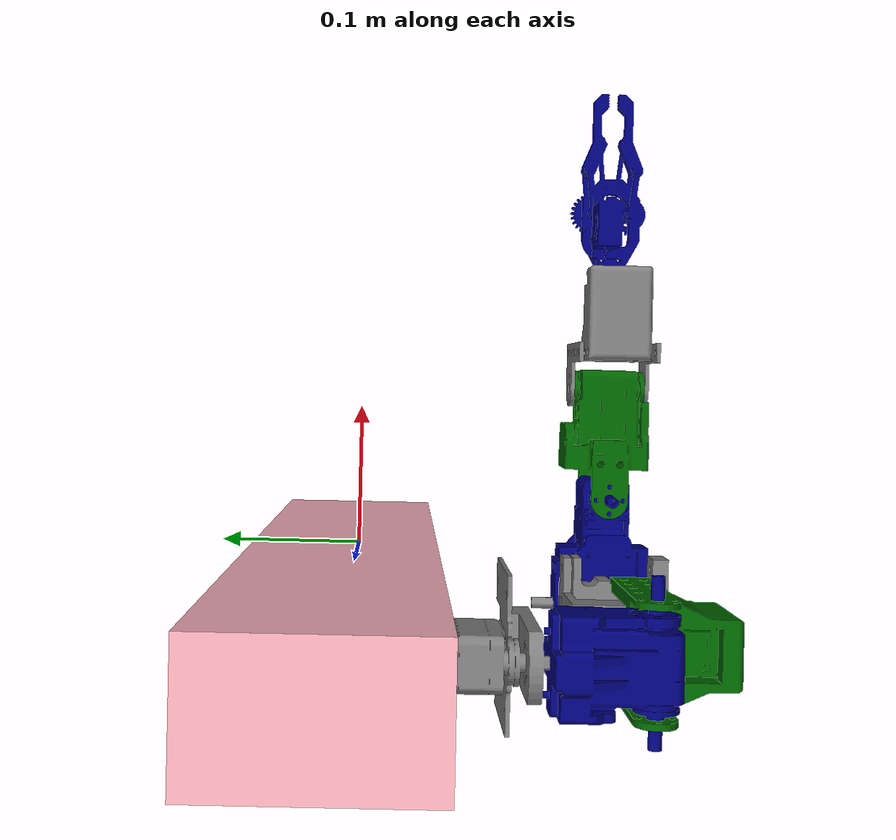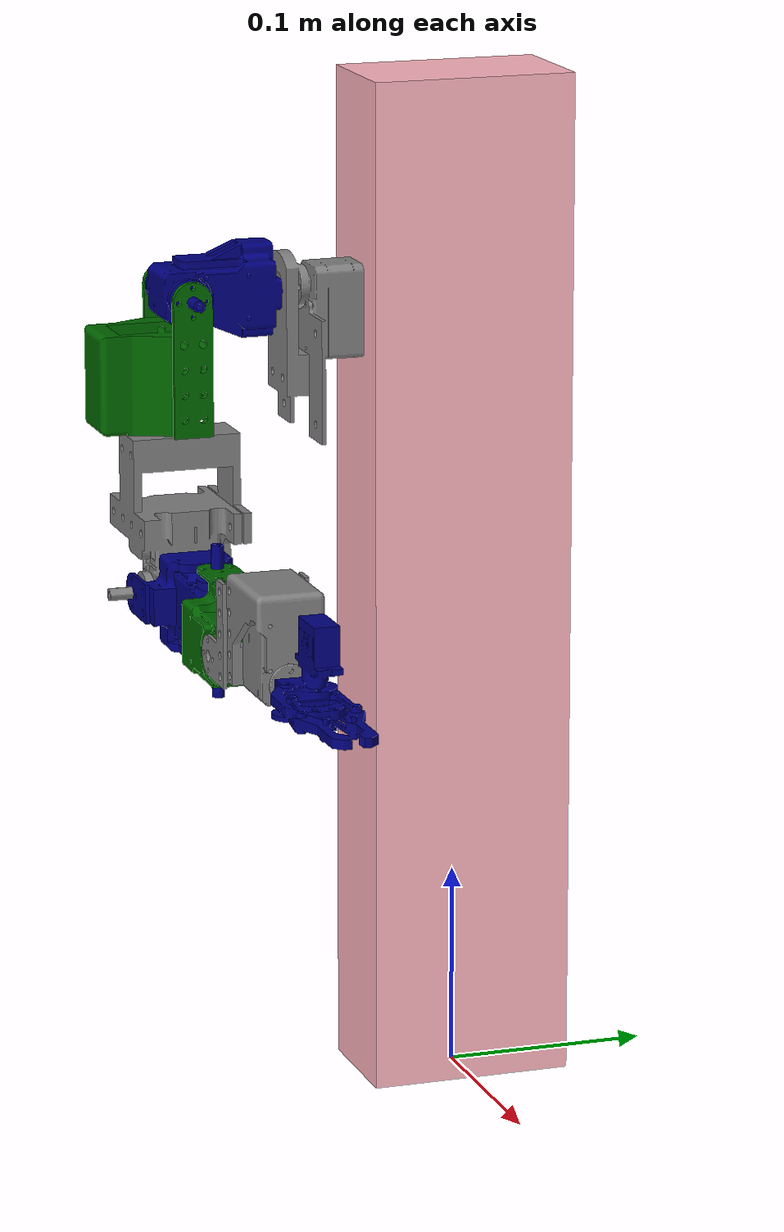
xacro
<?xml version="1.0" encoding="utf-8"?>
<robot name="my_robot"
       xmlns:xacro="http://www.ros.org/wiki/xacro">

  <material name="grey">
      <color rgba="0.5 0.5 0.5 1" />
  </material>

  <material name="blue">
      <color rgba="0 0 0.5 1" />
  </material>

  <material name="green">
      <color rgba="0 0.4 0 1" />
  </material>

    <!-- Torso / base box -->
  <link name="torso_link">
    <inertial>
      <origin xyz="0 0 0.25" rpy="0 0 0"/>
      <mass value="20"/>
      <inertia
        ixx="0.2" ixy="0.0" ixz="0.0"
        iyy="0.2" iyz="0.0"
        izz="0.2"/>
    </inertial>

    <visual>
      <origin xyz="0 0 0.25" rpy="0 0 0"/>
      <geometry>
        <!-- size = X Y Z -->
        <box size="0.06 0.10 0.50"/>
      </geometry>
      <material name="torso_color">
        <color rgba="1 0.71 0.75 1"/>
      </material>
    </visual>

    <collision>
      <origin xyz="0 0 0.25" rpy="0 0 0"/>
      <geometry>
        <box size="0.06 0.10 0.50"/>
      </geometry>
    </collision>
  </link>

  <link
    name="shoulder_base_link">
    <inertial>
      <origin
        xyz="9.72285362626814E-05 -0.00771018833850792 -0.0180870436313402"
        rpy="0 0 0" />
      <mass
        value="0.0651582805484437" />
      <inertia
        ixx="1.32767200995746E-05"
        ixy="2.02180637978025E-10"
        ixz="4.34736932940093E-09"
        iyy="1.87781055840213E-05"
        iyz="2.5203713255228E-07"
        izz="7.01496855003115E-06" />
    </inertial>
    <visual>
      <origin
        xyz="0 0 0"
        rpy="0 0 0" />
      <geometry>
        <mesh
          filename="package://poc_arm/meshes/shoulder_base_link.STL" />
      </geometry>
      <material name="grey"/>
    </visual>
    <collision>
      <origin
        xyz="0 0 0"
        rpy="0 0 0" />
      <geometry>
        <mesh
          filename="package://poc_arm/meshes/shoulder_base_link.STL" />
      </geometry>
    </collision>
  </link>

  <!-- torso -> shoulder_base_link fixed -->
  <joint name="torso_to_shoulder_base" type="fixed">
    <parent link="torso_link"/>
    <child link="shoulder_base_link"/>
    <!-- adjust this offset to place your arm on top of torso -->
    <origin xyz="0 -0.06 0.40" rpy="0 0 0"/>
  </joint>

  <link
    name="shoulder_pitch_link">
    <inertial>
      <origin
        xyz="0.000695666838488873 -0.0235536103888225 0.000772757622635567"
        rpy="0 0 0" />
      <mass
        value="0.0709282831936031" />
      <inertia
        ixx="1.4121265593662E-05"
        ixy="2.81431955942465E-07"
        ixz="3.48400900131928E-09"
        iyy="1.05923368644717E-05"
        iyz="-4.24399378660345E-09"
        izz="1.30240063378582E-05" />
    </inertial>
    <visual>
      <origin
        xyz="0 0 0"
        rpy="0 0 0" />
      <geometry>
        <mesh
          filename="package://poc_arm/meshes/shoulder_pitch_link.STL" />
      </geometry>
      <material name="blue"/>
    </visual>
    <collision>
      <origin
        xyz="0 0 0"
        rpy="0 0 0" />
      <geometry>
        <mesh
          filename="package://poc_arm/meshes/shoulder_pitch_link.STL" />
      </geometry>
    </collision>
  </link>
  <joint
    name="shoulder_pitch_joint"
    type="revolute">
    <origin
      xyz="0 -0.035425 -0.00068462"
      rpy="0 0 0" />
    <parent
      link="shoulder_base_link" />
    <child
      link="shoulder_pitch_link" />
    <axis
      xyz="0 1 0" />
    <limit
      lower="-1.5708"
      upper="1.5708"
      effort="3"
      velocity="4.7124" />
  </joint>
  <link
    name="shoulder_yaw_link">
    <inertial>
      <origin
        xyz="-7.16636869090015E-05 -0.0154295835467579 -0.0407985285364309"
        rpy="0 0 0" />
      <mass
        value="0.0876558621961866" />
      <inertia
        ixx="2.63501922071186E-05"
        ixy="-1.0273756822811E-09"
        ixz="3.57962371416784E-09"
        iyy="2.24741802292208E-05"
        iyz="-7.86171014215507E-07"
        izz="2.43319780460408E-05" />
    </inertial>
    <visual>
      <origin
        xyz="0 0 0"
        rpy="0 0 0" />
      <geometry>
        <mesh
          filename="package://poc_arm/meshes/shoulder_yaw_link.STL" />
      </geometry>
      <material name="green"/>
    </visual>
    <collision>
      <origin
        xyz="0 0 0"
        rpy="0 0 0" />
      <geometry>
        <mesh
          filename="package://poc_arm/meshes/shoulder_yaw_link.STL" />
      </geometry>
    </collision>
  </link>
  <joint
    name="shoulder_yaw_joint"
    type="revolute">
    <origin
      xyz="0.00105 -0.044 0.00068462"
      rpy="0 0 0" />
    <parent
      link="shoulder_pitch_link" />
    <child
      link="shoulder_yaw_link" />
    <axis
      xyz="-1 0 0" />
    <limit
      lower="-1.5708"
      upper="1.5708"
      effort="3"
      velocity="4.7124" />
  </joint>
  <link
    name="shoulder_roll_link">
    <inertial>
      <origin
        xyz="0.000598224096425182 0.000368232301833915 -0.0388934527972102"
        rpy="0 0 0" />
      <mass
        value="0.0957202475262049" />
      <inertia
        ixx="1.86893555445436E-05"
        ixy="3.37979558138656E-09"
        ixz="-5.20164247735112E-09"
        iyy="1.90201410451556E-05"
        iyz="3.38885725507434E-07"
        izz="1.74543729552576E-05" />
    </inertial>
    <visual>
      <origin
        xyz="0 0 0"
        rpy="0 0 0" />
      <geometry>
        <mesh
          filename="package://poc_arm/meshes/shoulder_roll_link.STL" />
      </geometry>
      <material name="grey"/>
    </visual>
    <collision>
      <origin
        xyz="0 0 0"
        rpy="0 0 0" />
      <geometry>
        <mesh
          filename="package://poc_arm/meshes/shoulder_roll_link.STL" />
      </geometry>
    </collision>
  </link>
  <joint
    name="shoulder_roll_joint"
    type="revolute">
    <origin
      xyz="-0.00053416 0.00043 -0.073682"
      rpy="0 0 0" />
    <parent
      link="shoulder_yaw_link" />
    <child
      link="shoulder_roll_link" />
    <axis
      xyz="0 0 1" />
    <limit
      lower="-3.1416"
      upper="3.1416"
      effort="3"
      velocity="4.7124" />
  </joint>
  <link
    name="elbow_link">
    <inertial>
      <origin
        xyz="0.0371367885423096 9.28363839227953E-05 -0.00102046411279516"
        rpy="0 0 0" />
      <mass
        value="0.0667662259503023" />
      <inertia
        ixx="9.52355890862179E-06"
        ixy="5.05999788993877E-09"
        ixz="3.31946587696942E-07"
        iyy="1.14943140009411E-05"
        iyz="-3.44599092893705E-09"
        izz="1.20469291874261E-05" />
    </inertial>
    <visual>
      <origin
        xyz="0 0 0"
        rpy="0 0 0" />
      <geometry>
        <mesh
          filename="package://poc_arm/meshes/elbow_link.STL" />
      </geometry>
      <material name="blue"/>
    </visual>
    <collision>
      <origin
        xyz="0 0 0"
        rpy="0 0 0" />
      <geometry>
        <mesh
          filename="package://poc_arm/meshes/elbow_link.STL" />
      </geometry>
    </collision>
  </link>
  <joint
    name="elbow_joint"
    type="revolute">
    <origin
      xyz="0.00053416 0.000975 -0.071218"
      rpy="0 0 0" />
    <parent
      link="shoulder_roll_link" />
    <child
      link="elbow_link" />
    <axis
      xyz="0 1 0" />
    <limit
      lower="-1.5708"
      upper="1.5708"
      effort="3"
      velocity="4.7124" />
  </joint>
  <link
    name="wrist_yaw_link">
    <inertial>
      <origin
        xyz="0.036553713663152 -0.00101027468598142 -9.47176882014344E-05"
        rpy="0 0 0" />
      <mass
        value="0.064926422683629" />
      <inertia
        ixx="9.44475784574009E-06"
        ixy="3.31943681574519E-07"
        ixz="-5.15844801071361E-09"
        iyy="1.19856436826231E-05"
        iyz="3.44599438984892E-09"
        izz="1.14155778566391E-05" />
    </inertial>
    <visual>
      <origin
        xyz="0 0 0"
        rpy="0 0 0" />
      <geometry>
        <mesh
          filename="package://poc_arm/meshes/wrist_yaw_link.STL" />
      </geometry>
      <material name="green"/>
    </visual>
    <collision>
      <origin
        xyz="0 0 0"
        rpy="0 0 0" />
      <geometry>
        <mesh
          filename="package://poc_arm/meshes/wrist_yaw_link.STL" />
      </geometry>
    </collision>
  </link>
  <joint
    name="wrist_yaw_joint"
    type="revolute">
    <origin
      xyz="0.05775 0 -0.0014736"
      rpy="0 0 0" />
    <parent
      link="elbow_link" />
    <child
      link="wrist_yaw_link" />
    <axis
      xyz="0 0 -1" />
    <limit
      lower="-1.5708"
      upper="1.5708"
      effort="3"
      velocity="4.7124" />
  </joint>
  <link
    name="wrist_pitch_link">
    <inertial>
      <origin
        xyz="0.0388612908036284 -9.12564783519809E-05 0.0179986146830543"
        rpy="0 0 0" />
      <mass
        value="0.068090612286214" />
      <inertia
        ixx="1.53730307192974E-05"
        ixy="-6.12074986419374E-09"
        ixz="-2.23215999547685E-06"
        iyy="1.77943821269709E-05"
        iyz="2.69056680169709E-09"
        izz="1.08368146199862E-05" />
    </inertial>
    <visual>
      <origin
        xyz="0 0 0"
        rpy="0 0 0" />
      <geometry>
        <mesh
          filename="package://poc_arm/meshes/wrist_pitch_link.STL" />
      </geometry>
      <material name="grey"/>
    </visual>
    <collision>
      <origin
        xyz="0 0 0"
        rpy="0 0 0" />
      <geometry>
        <mesh
          filename="package://poc_arm/meshes/wrist_pitch_link.STL" />
      </geometry>
    </collision>
  </link>
  <joint
    name="wrist_pitch_joint"
    type="revolute">
    <origin
      xyz="0.05775 -0.0014764 0"
      rpy="0 0 0" />
    <parent
      link="wrist_yaw_link" />
    <child
      link="wrist_pitch_link" />
    <axis
      xyz="0 -1 0" />
    <limit
      lower="-1.5708"
      upper="1.5708"
      effort="3"
      velocity="4.7124" />
  </joint>
  <link
    name="wrist_roll_link">
    <inertial>
      <origin
        xyz="0.0293162151901096 0.00263781286832326 0.00883592891095641"
        rpy="0 0 0" />
      <mass
        value="0.0182988414894133" />
      <inertia
        ixx="8.97211158969286E-07"
        ixy="-1.43959044204209E-08"
        ixz="-3.68077000884773E-08"
        iyy="2.06132166470996E-06"
        iyz="-1.32773386121325E-13"
        izz="2.11183104538046E-06" />
    </inertial>
    <visual>
      <origin
        xyz="0 0 0"
        rpy="0 0 0" />
      <geometry>
        <mesh
          filename="package://poc_arm/meshes/wrist_roll_link.STL" />
      </geometry>
      <material name="blue"/>
    </visual>
    <collision>
      <origin
        xyz="0 0 0"
        rpy="0 0 0" />
      <geometry>
        <mesh
          filename="package://poc_arm/meshes/wrist_roll_link.STL" />
      </geometry>
    </collision>
  </link>
  <joint
    name="wrist_roll_joint"
    type="revolute">
    <origin
      xyz="0.065225 0 0"
      rpy="0 0 0.0013329" />
    <parent
      link="wrist_pitch_link" />
    <child
      link="wrist_roll_link" />
    <axis
      xyz="-1 0 0" />
    <limit
      lower="-3.1416"
      upper="3.1416"
      effort="3"
      velocity="4.7124" />
  </joint>

  <gazebo reference="torso_link">
      <material>Gazebo/White</material>
  </gazebo>

  <gazebo reference="shoulder_base_link">
      <material>Gazebo/Grey</material>
  </gazebo>

  <gazebo reference="shoulder_pitch_link">
      <material>Gazebo/Blue</material>
  </gazebo>

  <gazebo reference="shoulder_yaw_link">
      <material>Gazebo/Green</material>
  </gazebo>

  <gazebo reference="shoulder_roll_link">
      <material>Gazebo/Yellow</material>
  </gazebo>

  <gazebo reference="elbow_link">
      <material>Gazebo/Blue</material>
  </gazebo>

  <gazebo reference="wrist_yaw_link">
      <material>Gazebo/Green</material>
  </gazebo>

  <gazebo reference="wrist_pitch_link">
      <material>Gazebo/Grey</material>
  </gazebo>

  <gazebo reference="wrist_roll_link">
      <material>Gazebo/Red</material>
  </gazebo>

</robot>
